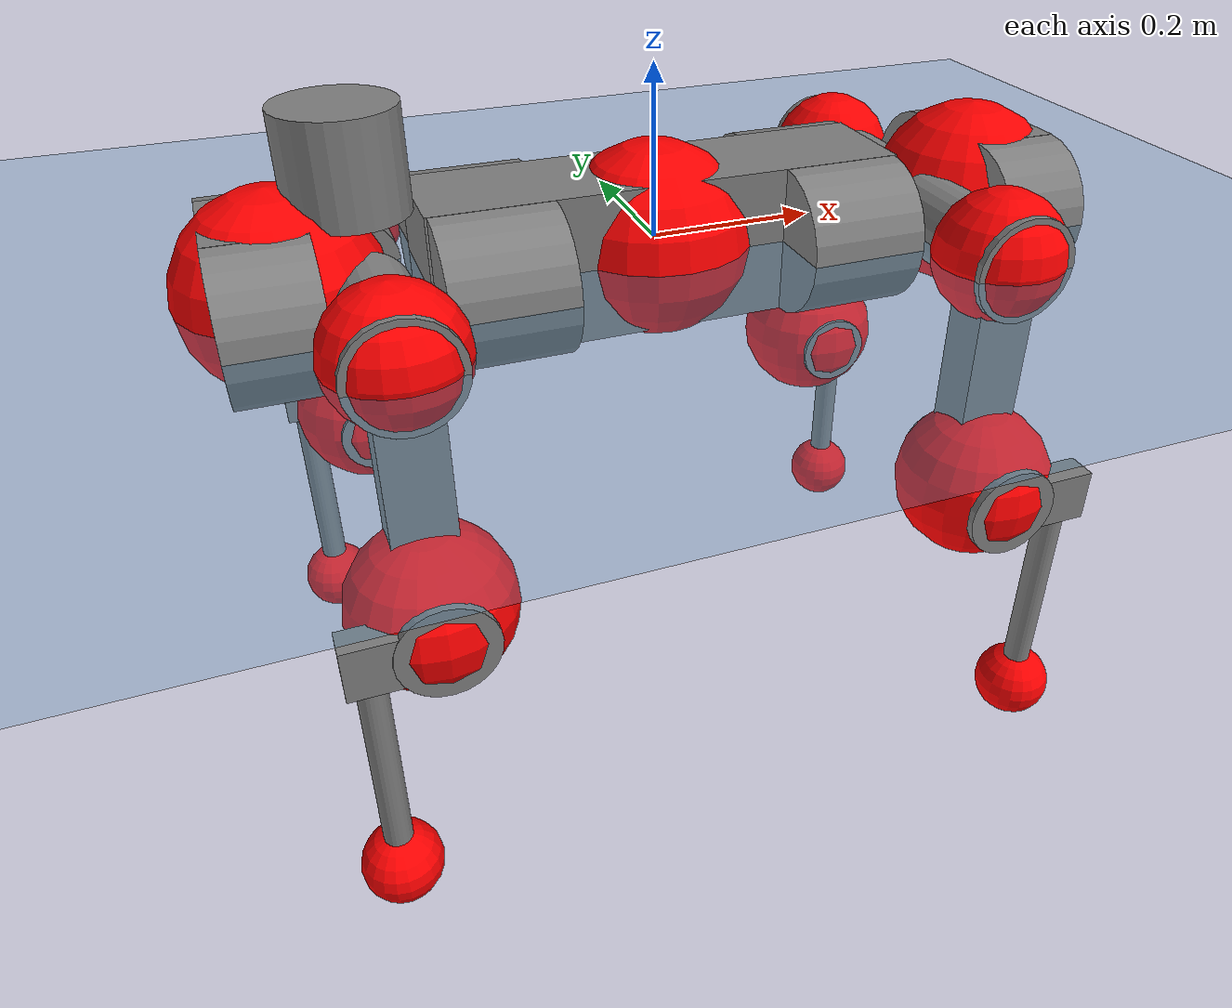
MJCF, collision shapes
<mujoco model="anymal_c">
  <compiler angle="radian" assetdir="assets" balanceinertia="true" inertiafromgeom="false"/>

  <option timestep="0.005" density="1.2" viscosity="2e-05"/>

  <size nkey="1"/>

  <visual>
    <quality shadowsize="8192"/>
    <map shadowclip="0.5"/>
  </visual>

  <default>
    <default class="/">
      <material specular="0" shininess="0.25"/>
      <geom contype="0" conaffinity="0" group="1" solref="-1000 -80"/>
      <site size="0.01 0.005 0.005" group="5"/>
      <general forcelimited="true" forcerange="-80 80" biastype="affine" gainprm="80" biasprm="0 -80 -2"/>
      <default class="anymal_c">
        <joint armature="0.01" damping="0.01" frictionloss="0.1"/>
        <default class="visual">
          <geom type="mesh" group="2"/>
          <default class="visual_zflip"/>
        </default>
        <default class="collision">
          <geom type="cylinder" group="3"/>
          <default class="foot">
            <geom size="0.03 0 0" type="sphere" condim="6" priority="1" friction="0.8 0.02 0.01" solimp="0.015 1 0.03"/>
          </default>
        </default>
      </default>
      <default class="reward_collision_sphere">
        <geom group="5" rgba="1 0 0 1"/>
      </default>
    </default>
  </default>

  <asset>
    <texture type="skybox" colorspace="auto" name="//unnamed_texture_0" builtin="gradient" rgb1="0.95 0.95 0.95" rgb2="0.95 0.95 0.95" width="100" height="600"/>
    <texture type="2d" colorspace="auto" name="texplane" builtin="checker" rgb1="0.345 0.575 0.748" rgb2="0.345 0.575 0.748" markrgb="1 1 1" width="512" height="512"/>
    <texture type="2d" colorspace="linear" name="base" file="base.png"/>
    <texture type="2d" colorspace="linear" name="top_shell" file="top_shell.png"/>
    <texture type="2d" colorspace="linear" name="bottom_shell" file="bottom_shell.png"/>
    <texture type="2d" colorspace="linear" name="remote" file="remote.png"/>
    <texture type="2d" colorspace="linear" name="hatch" file="hatch.png"/>
    <texture type="2d" colorspace="linear" name="handle" file="handle.png"/>
    <texture type="2d" colorspace="linear" name="face" file="face.png"/>
    <texture type="2d" colorspace="linear" name="battery" file="battery.png"/>
    <texture type="2d" colorspace="linear" name="lidar_cage" file="lidar_cage.png"/>
    <texture type="2d" colorspace="linear" name="depth_camera" file="depth_camera.png"/>
    <texture type="2d" colorspace="linear" name="wide_angle_camera" file="wide_angle_camera.png"/>
    <texture type="2d" colorspace="linear" name="lidar" file="lidar.png"/>
    <texture type="2d" colorspace="linear" name="drive" file="drive.png"/>
    <texture type="2d" colorspace="linear" name="hip_l" file="hip_l.png"/>
    <texture type="2d" colorspace="linear" name="shank_l" file="shank_l.png"/>
    <texture type="2d" colorspace="linear" name="foot" file="foot.png"/>
    <texture type="2d" colorspace="linear" name="thigh" file="thigh.png"/>
    <texture type="2d" colorspace="linear" name="shank_r" file="shank_r.png"/>
    <texture type="2d" colorspace="linear" name="hip_r" file="hip_r.png"/>
    <material name="MatPlane" class="/" texture="texplane" texuniform="true" texrepeat="2 2" specular="0.9" shininess="0.5"/>
    <material name="black_plastic" class="/" rgba="0.007 0.007 0.007 1"/>
    <material name="green" class="/" rgba="0.052 0.178 0.033 1"/>
    <material name="red" class="/" rgba="0.178 0.006 0.005 1"/>
    <material name="yellow" class="/" rgba="0.178 0.119 0.006 1"/>
    <material name="lwl" class="/" rgba="0.8 0.8 0.8 1"/>
    <material name="base" class="/" texture="base"/>
    <material name="top_shell" class="/" texture="top_shell"/>
    <material name="bottom_shell" class="/" texture="bottom_shell"/>
    <material name="hip_l" class="/" texture="hip_l"/>
    <material name="thigh" class="/" texture="thigh"/>
    <material name="shank_l" class="/" texture="shank_l"/>
    <material name="foot" class="/" texture="foot"/>
    <material name="hip_r" class="/" texture="hip_r"/>
    <material name="shank" class="/" texture="shank_r"/>
    <material name="hatch" class="/" texture="hatch"/>
    <material name="remote" class="/" texture="remote"/>
    <material name="handle" class="/" texture="handle"/>
    <material name="face" class="/" texture="face"/>
    <material name="depth_camera" class="/" texture="depth_camera"/>
    <material name="wide_angle_camera" class="/" texture="wide_angle_camera"/>
    <material name="battery" class="/" texture="battery"/>
    <material name="lidar_cage" class="/" texture="lidar_cage"/>
    <material name="lidar" class="/" texture="lidar"/>
    <material name="drive" class="/" texture="drive"/>
    <mesh name="base_0" class="/" file="base_0.obj"/>
    <mesh name="base_1" class="/" file="base_1.obj"/>
    <mesh name="base_2" class="/" file="base_2.obj"/>
    <mesh name="base_3" class="/" file="base_3.obj"/>
    <mesh name="base_4" class="/" file="base_4.obj"/>
    <mesh name="base_5" class="/" file="base_5.obj"/>
    <mesh name="top_shell" class="/" file="top_shell.obj"/>
    <mesh name="bottom_shell" class="/" file="bottom_shell.obj"/>
    <mesh name="remote" class="/" file="remote.obj"/>
    <mesh name="handle" class="/" file="handle.obj"/>
    <mesh name="face" class="/" file="face.obj"/>
    <mesh name="wide_angle_camera" class="/" file="wide_angle_camera.obj"/>
    <mesh name="depth_camera" class="/" file="depth_camera.obj"/>
    <mesh name="battery" class="/" file="battery.obj"/>
    <mesh name="lidar_cage" class="/" file="lidar_cage.obj"/>
    <mesh name="lidar" class="/" file="lidar.obj"/>
    <mesh name="drive" class="/" file="drive.obj"/>
    <mesh name="hip_l" class="/" file="hip_l.obj"/>
    <mesh name="thigh" class="/" file="thigh.obj"/>
    <mesh name="shank_l" class="/" file="shank_l.obj"/>
    <mesh name="foot" class="/" file="foot.obj"/>
    <mesh name="hip_r" class="/" file="hip_r.obj"/>
    <mesh name="hatch" class="/" file="hatch.obj"/>
    <mesh name="shank_r" class="/" file="shank_r.obj"/>
  </asset>

  <worldbody>
    <geom name="floor" class="/" size="100 100 0.125" type="plane" group="0" material="MatPlane"/>
    <light name="toplight_shadow" class="/" pos="0 0 5" dir="0.0990148 0.0990148 -0.990148" type="directional" ambient="0.04 0.04 0.04" diffuse="0.55 0.55 0.55" specular="0.12 0.12 0.12"/>
    <light name="toplight_fill" class="/" pos="0 0 5" dir="0.0990148 0.0990148 -0.990148" type="directional" castshadow="false" ambient="0.04 0.04 0.04" diffuse="0.3 0.3 0.3" specular="0.08 0.08 0.08"/>
    <body name="trunk" childclass="anymal_c" pos="7.37639e-05 -6.84468e-05 -0.0010969" quat="1 8.1959e-05 5.04391e-05 5.94514e-05">
      <inertial pos="0.00269312 0.00235898 0.050565" quat="0.499691 0.500034 0.500248 0.500027" mass="16.6795" diaginertia="0.489784 0.402761 0.226406"/>
      <joint name="//unnamed_joint_0" type="free" armature="0" damping="0" frictionloss="0"/>
      <geom name="//unnamed_geom_1" class="visual" material="green" mesh="base_0"/>
      <geom name="//unnamed_geom_2" class="visual" material="yellow" mesh="base_1"/>
      <geom name="//unnamed_geom_3" class="visual" material="red" mesh="base_2"/>
      <geom name="//unnamed_geom_4" class="visual" material="black_plastic" mesh="base_3"/>
      <geom name="//unnamed_geom_5" class="visual" material="lwl" mesh="base_4"/>
      <geom name="//unnamed_geom_6" class="visual" material="base" mesh="base_5"/>
      <geom name="trunk_1" class="collision" size="0.277272 0.0669276 0.0860498" type="box"/>
      <geom name="trunk_2" class="collision" size="0.0860498 0.0693179" pos="0.205186 0.0640724 0" quat="0.707107 0 0.707107 0"/>
      <geom name="trunk_3" class="collision" size="0.0860498 0.0693179" pos="-0.205186 0.0640724 0" quat="0.707107 0 0.707107 0"/>
      <geom name="trunk_4" class="collision" size="0.0860498 0.0693179" pos="0.205186 -0.0640724 0" quat="0.707107 0 0.707107 0"/>
      <geom name="trunk_5" class="collision" size="0.0860498 0.0693179" pos="-0.205186 -0.0640724 0" quat="0.707107 0 0.707107 0"/>
      <geom name="//unnamed_geom_12" class="visual" material="top_shell" mesh="top_shell"/>
      <geom name="//unnamed_geom_13" class="visual" material="bottom_shell" mesh="bottom_shell"/>
      <geom name="//unnamed_geom_14" class="visual" material="remote" mesh="remote"/>
      <geom name="//unnamed_geom_15" class="visual" material="handle" mesh="handle"/>
      <geom name="//unnamed_geom_16" class="visual" pos="0.391032 0 0" quat="1 0 0 0" material="face" mesh="face"/>
      <geom name="trunk_6" class="collision" size="0.052586 0.0669276 0.0860498" pos="0.442918 0 0" type="box"/>
      <geom name="//unnamed_geom_18" class="collision" size="0.0860498 0.052586" pos="0.442918 0.0640724 0" quat="0.707107 0 0.707107 0"/>
      <geom name="//unnamed_geom_19" class="collision" size="0.0860498 0.052586" pos="0.442918 -0.0640724 0" quat="0.707107 0 0.707107 0"/>
      <geom name="//unnamed_geom_20" class="visual" pos="0.435515 0 -0.0299845" quat="0.965926 0 0.258819 0" material="depth_camera" mesh="depth_camera"/>
      <geom name="//unnamed_geom_21" class="visual" pos="0.483955 0 0.0151141" material="wide_angle_camera" mesh="wide_angle_camera"/>
      <geom name="//unnamed_geom_22" class="visual_zflip" pos="-0.391032 0 0" quat="0 0 0 1" material="face" mesh="face"/>
      <geom name="trunk_7" class="collision" size="0.052586 0.0669276 0.0860498" pos="-0.442918 0 0" quat="0 0 0 1" type="box"/>
      <geom name="//unnamed_geom_24" class="collision" size="0.0860498 0.052586" pos="-0.442918 -0.0640724 0" quat="0 -0.707107 0 0.707107"/>
      <geom name="//unnamed_geom_25" class="collision" size="0.0860498 0.052586" pos="-0.442918 0.0640724 0" quat="0 -0.707107 0 0.707107"/>
      <geom name="//unnamed_geom_26" class="visual" pos="-0.435515 0 -0.0299845" quat="0 -0.258819 0 0.965926" material="depth_camera" mesh="depth_camera"/>
      <geom name="//unnamed_geom_27" class="visual_zflip" pos="-0.483955 0 0.0151141" quat="0 0 0 1" material="wide_angle_camera" mesh="wide_angle_camera"/>
      <geom name="//unnamed_geom_28" class="visual" material="battery" mesh="battery"/>
      <geom name="//unnamed_geom_29" class="visual" pos="0 0.0696199 0.0288261" quat="0.683013 -0.183013 0.183013 0.683013" material="depth_camera" mesh="depth_camera"/>
      <geom name="//unnamed_geom_30" class="visual" pos="0 -0.0696199 0.0288261" quat="0.683013 0.183013 0.183013 -0.683013" material="depth_camera" mesh="depth_camera"/>
      <geom name="//unnamed_geom_31" class="visual" pos="-0.343391 0 0.0742074" quat="1 0 0 0" material="lidar_cage" mesh="lidar_cage"/>
      <geom name="trunk_8" class="collision" size="0.0669276 0.0573665" pos="-0.343391 0 0.134785"/>
      <geom name="//unnamed_geom_33" class="visual" pos="-0.343391 -1.10248e-05 0.143569" quat="0.707107 0 0 -0.707107" material="lidar" mesh="lidar"/>
      <geom name="//unnamed_geom_34" class="visual" pos="0.28292 0.0952268 -1.62676e-09" quat="0.258819 0.965926 0 0" material="drive" mesh="drive"/>
      <geom name="//unnamed_geom_35" class="visual" pos="0.28292 -0.0952268 1.62676e-09" quat="0.258819 -0.965926 0 0" material="drive" mesh="drive"/>
      <geom name="//unnamed_geom_36" class="visual" pos="-0.28292 0.0952268 1.62676e-09" quat="0 0 0.965926 -0.258819" material="drive" mesh="drive"/>
      <geom name="//unnamed_geom_37" class="visual" pos="-0.28292 -0.0952268 -1.62676e-09" quat="0 0 -0.965926 -0.258819" material="drive" mesh="drive"/>
      <geom name="//unnamed_geom_38" class="visual" pos="0.109432 0 0.0737026" quat="1 0 0 0" material="hatch" mesh="hatch"/>
      <geom name="//unnamed_geom_39" class="reward_collision_sphere" size="0.114733"/>
      <geom name="//unnamed_geom_40" class="reward_collision_sphere" size="0.114733" pos="0.424522 0 0"/>
      <geom name="//unnamed_geom_41" class="reward_collision_sphere" size="0.114733" pos="-0.424522 0 0"/>
      <site name="imu" pos="0.229643 0.00767212 0.0420313" size="0.00956109"/>
      <camera name="track" pos="0 -1.83064 0" quat="0.707107 0.707107 0 0" mode="trackcom"/>
      <camera name="ego_camera" pos="0.424522 0 -0.040385" quat="-0.5 -0.5 0.5 0.5"/>
      <body name="LF_HIP" pos="0.283449 0.0953374 0.000234214" quat="0.258261 0.966075 -9.23979e-05 -9.83589e-05">
        <inertial pos="0.051497 -0.0137439 -0.00800734" quat="-0.127816 0.709597 -0.135544 0.679531" mass="2.49252" diaginertia="0.00443822 0.00320631 0.00350317"/>
        <joint name="LF_HAA" pos="0 0 0" axis="0.999999 -0.000884305 0.000906154" range="-0.704941 0.492808" armature="0.00976372" damping="0.00953111" frictionloss="0.0866059"/>
        <geom name="//unnamed_geom_42" class="visual" pos="0 -9.56948e-05 1.57178e-05" quat="0.258819 -0.965926 0 0" material="hip_l" mesh="hip_l"/>
        <geom name="//unnamed_geom_43" class="visual" pos="0.0565086 -0.0681362 -0.040036" quat="0.183013 -0.683013 0.683013 0.183013" material="drive" mesh="drive"/>
        <geom name="//unnamed_geom_44" class="collision" size="0.0478054 0.0669276" pos="0.0565086 -0.010947 -0.00697146" quat="-0.353553 -0.612372 0.612372 -0.353553"/>
        <body name="LF_THIGH" pos="0.0569608 -0.0661461 -0.0425915" quat="0.182771 -0.68314 0.683019 0.182759">
          <inertial pos="0.0292077 0.000319781 -0.24794" quat="0.993345 -0.00639054 -0.0797477 0.0828579" mass="2.57967" diaginertia="0.0226412 0.0190429 0.00413248"/>
          <joint name="LF_HFE" pos="0 0 0" axis="0.999999 0.000202886 0.00136768" stiffness="0.00127057" range="-3.16057 3.12433" armature="0.00923515" damping="0.00862145" frictionloss="0.0975667"/>
          <geom name="//unnamed_geom_45" class="visual" pos="0.000558325 8.79789e-07 0" quat="0.707107 0 0 -0.707107" material="thigh" mesh="thigh"/>
          <geom name="//unnamed_geom_46" class="collision" size="0.0621471 0.0382443" pos="0.0377353 0 0" quat="0.5 0.5 -0.5 -0.5"/>
          <geom name="//unnamed_geom_47" class="collision" size="0.0358541 0.0286833 0.135112" pos="0.0283015 0 -0.142674" quat="0.707107 0 0 -0.707107" type="box"/>
          <geom name="//unnamed_geom_48" class="visual" pos="0.0946212 0 -0.287743" quat="1 0 0 0" material="drive" mesh="drive"/>
          <geom name="//unnamed_geom_49" class="collision" size="0.0478054 0.0669276" pos="0.0285845 0 -0.287743" quat="0.707107 0 0.707107 0"/>
          <geom name="//unnamed_geom_50" class="reward_collision_sphere" size="0.0764887" pos="0.0235846 0 0"/>
          <body name="LF_SHANK" pos="0.0953772 0.000291568 -0.287063" quat="0.999999 -0.000139366 -0.00121151 -0.000255708">
            <inertial pos="0.0045943 -0.0561253 -0.0816437" quat="0.992939 -0.115835 -0.00122889 -0.0255355" mass="0.511879" diaginertia="0.00760387 0.00580038 0.00116271"/>
            <joint name="LF_KFE" pos="0 0 0" axis="0.999996 0.00117341 0.00240607" range="-3.13763 3.14747" armature="0.00987943" damping="0.0182992" frictionloss="0.0902641"/>
            <geom name="//unnamed_geom_51" class="visual" pos="0.000182057 0.00097074 0" quat="0.707107 0 0 -0.707107" material="shank_l" mesh="shank_l"/>
            <geom name="LF_kfe_act" class="collision" size="0.0573665 0.0191222" pos="0.0188676 0 0" quat="0.5 0.5 -0.5 -0.5"/>
            <geom name="//unnamed_geom_53" class="collision" size="0.0549753 0.0322687 0.0181661" pos="0.0188676 -0.05263 0" quat="0.5 0.5 -0.5 -0.5" type="box"/>
            <geom name="//unnamed_geom_54" class="visual" pos="0.0123111 -0.0801896 -0.341223" quat="0.382683 0 0 -0.92388" material="foot" mesh="foot"/>
            <geom name="LF_calf" class="collision" size="0.0167319 0.135052" pos="0.0123111 -0.0805024 -0.170611" quat="0.707107 0 0 -0.707107"/>
            <geom name="LF_foot" class="foot" size="0.0310198" pos="0.0123111 -0.0805024 -0.318506" quat="0.707107 0 0 -0.707107"/>
            <geom name="//unnamed_geom_57" class="reward_collision_sphere" size="0.0956109" pos="-0.0471691 0 0"/>
            <geom name="//unnamed_geom_58" class="reward_collision_sphere" size="0.0478054" pos="0.0123111 -0.0805024 -0.318506"/>
            <site name="LF_foot" class="foot" pos="0.0123111 -0.0805024 -0.318506" quat="0.707107 0 0 -0.707107" size="0.00956109"/>
          </body>
        </body>
      </body>
      <body name="RF_HIP" pos="0.282547 -0.0959039 0.000702184" quat="0.259522 -0.965737 -8.55269e-06 0.000101915">
        <inertial pos="0.0537826 0.0140685 -0.00803326" quat="0.135623 0.679771 0.128693 0.709194" mass="2.3316" diaginertia="0.00422645 0.00308642 0.0034503"/>
        <joint name="RF_HAA" pos="0 0 0" axis="0.999994 0.00331782 0.000123066" range="-0.463668 0.675548" armature="0.00964239" damping="0.00418956" frictionloss="0.0927409"/>
        <geom name="//unnamed_geom_59" class="visual" pos="0 9.56941e-05 1.57178e-05" quat="0.258819 0.965926 0 0" material="hip_r" mesh="hip_r"/>
        <geom name="//unnamed_geom_60" class="visual" pos="0.0565086 0.0681362 -0.040036" quat="0.183013 0.683013 0.683013 -0.183013" material="drive" mesh="drive"/>
        <geom name="//unnamed_geom_61" class="collision" size="0.0478054 0.0669276" pos="0.0565086 0.010947 -0.00697146" quat="-0.353553 0.612372 0.612372 0.353553"/>
        <body name="RF_THIGH" pos="0.0593764 0.0664052 -0.0424465" quat="0.183401 0.682953 0.683029 -0.182788">
          <inertial pos="0.0292922 -1.46933e-05 -0.247768" quat="0.992692 -0.00561545 -0.0812215 0.0890761" mass="2.78208" diaginertia="0.0226491 0.0199991 0.00449926"/>
          <joint name="RF_HFE" pos="0 0 0" axis="0.999929 0.00421752 0.0111189" stiffness="0.00602566" range="-3.09063 3.09222" armature="0.00954889" damping="0.000293473" frictionloss="0.099681"/>
          <geom name="//unnamed_geom_62" class="visual" pos="0.000558325 8.79789e-07 0" quat="0.707107 0 0 -0.707107" material="thigh" mesh="thigh"/>
          <geom name="//unnamed_geom_63" class="collision" size="0.0621471 0.0382443" pos="0.0377353 0 0" quat="0.5 0.5 0.5 0.5"/>
          <geom name="//unnamed_geom_64" class="collision" size="0.0358541 0.0286833 0.135112" pos="0.0283015 0 -0.142674" quat="0.707107 0 0 0.707107" type="box"/>
          <geom name="//unnamed_geom_65" class="visual" pos="0.0946212 0 -0.287743" quat="1 0 0 0" material="drive" mesh="drive"/>
          <geom name="//unnamed_geom_66" class="collision" size="0.0478054 0.0669276" pos="0.0285845 0 -0.287743" quat="0.707107 0 0.707107 0"/>
          <geom name="//unnamed_geom_67" class="reward_collision_sphere" size="0.0764887" pos="0.0235846 0 0"/>
          <body name="RF_SHANK" pos="0.096809 -0.0010016 -0.287764" quat="1 0.000205615 0.000126861 1.55238e-05">
            <inertial pos="0.00633698 0.0569257 -0.0787063" quat="0.992329 0.120699 0.000414346 0.0267425" mass="0.496869" diaginertia="0.00760956 0.00592023 0.00117171"/>
            <joint name="RF_KFE" pos="0 0 0" axis="0.999902 0.0131256 0.004883" range="-3.15596 3.09876" armature="0.00966995" damping="0.00833865" frictionloss="0.0831727"/>
            <geom name="//unnamed_geom_68" class="visual" pos="0.000182056 -0.000970738 0" quat="0.707107 0 0 0.707107" material="shank" mesh="shank_r"/>
            <geom name="RF_kfe_act" class="collision" size="0.0573665 0.0191222" pos="0.0188676 0 0" quat="0.5 0.5 0.5 0.5"/>
            <geom name="//unnamed_geom_70" class="collision" size="0.0549753 0.0322687 0.0181661" pos="0.0188676 0.05263 0" quat="0.5 0.5 0.5 0.5" type="box"/>
            <geom name="//unnamed_geom_71" class="visual" pos="0.0123112 0.0801896 -0.341223" quat="0.382683 0 0 0.92388" material="foot" mesh="foot"/>
            <geom name="RF_calf" class="collision" size="0.0167319 0.135052" pos="0.0123111 0.0805024 -0.170611" quat="0.707107 0 0 0.707107"/>
            <geom name="RF_foot" class="foot" size="0.0291066" pos="0.0123111 0.0805024 -0.318506" quat="0.707107 0 0 0.707107"/>
            <geom name="//unnamed_geom_74" class="reward_collision_sphere" size="0.0956109" pos="-0.0471691 0 0"/>
            <geom name="//unnamed_geom_75" class="reward_collision_sphere" size="0.0478054" pos="0.0123111 0.0805024 -0.318506"/>
            <site name="RF_foot" class="foot" pos="0.0123111 0.0805024 -0.318506" quat="0.707107 0 0 0.707107" size="0.00956109"/>
          </body>
        </body>
      </body>
      <body name="LH_HIP" pos="-0.281833 0.0967519 0.0003657" quat="-4.8557e-06 3.06586e-07 0.965921 -0.258837">
        <inertial pos="0.0539649 0.011772 -0.0087062" quat="0.14136 0.676497 0.117215 0.713183" mass="2.35306" diaginertia="0.00432535 0.00319175 0.00348221"/>
        <joint name="LH_HAA" pos="0 0 0" axis="0.999992 0.00147114 -0.00374716" range="-0.509339 0.732419" armature="0.00964265" damping="0.00588647" frictionloss="0.0946439"/>
        <geom name="//unnamed_geom_76" class="visual" pos="0 9.56941e-05 1.57178e-05" quat="-0.258819 -0.965926 0 0" material="hip_r" mesh="hip_r"/>
        <geom name="//unnamed_geom_77" class="visual" pos="0.0565086 0.0681362 -0.040036" quat="0.183013 0.683013 0.683013 -0.183013" material="drive" mesh="drive"/>
        <geom name="//unnamed_geom_78" class="collision" size="0.0478054 0.0669276" pos="0.0565086 0.010947 -0.00697146" quat="-0.353553 0.612372 0.612372 0.353553"/>
        <body name="LH_THIGH" pos="0.0557479 0.0644519 -0.0422221" quat="0.182976 0.683181 0.682862 -0.182985">
          <inertial pos="0.0301657 -0.00117371 -0.247914" quat="0.99312 -0.00209102 -0.0799359 0.0855437" mass="2.70308" diaginertia="0.023399 0.0197653 0.00449813"/>
          <joint name="LH_HFE" pos="0 0 0" axis="0.999996 -0.000331461 0.00293787" range="-3.14237 3.13691" armature="0.00946635" damping="0.0100256" frictionloss="0.0952489"/>
          <geom name="//unnamed_geom_79" class="visual" pos="0.000558325 8.79789e-07 0" quat="0.707107 0 0 -0.707107" material="thigh" mesh="thigh"/>
          <geom name="//unnamed_geom_80" class="collision" size="0.0621471 0.0382443" pos="0.0377353 0 0" quat="0.5 0.5 -0.5 -0.5"/>
          <geom name="//unnamed_geom_81" class="collision" size="0.0358541 0.0286833 0.135112" pos="0.0283015 0 -0.142674" quat="0.707107 0 0 -0.707107" type="box"/>
          <geom name="//unnamed_geom_82" class="visual" pos="0.0946212 0 -0.287743" quat="1 0 0 0" material="drive" mesh="drive"/>
          <geom name="//unnamed_geom_83" class="collision" size="0.0478054 0.0669276" pos="0.0285845 0 -0.287743" quat="0.707107 0 0.707107 0"/>
          <geom name="//unnamed_geom_84" class="reward_collision_sphere" size="0.0764887" pos="0.0235846 0 0"/>
          <body name="LH_SHANK" pos="0.0960468 -0.000566514 -0.288079" quat="1 -0.000602971 -0.000384885 8.55254e-05">
            <inertial pos="0.0066811 0.056989 -0.0823005" quat="0.99292 0.115936 -0.00103785 0.0258444" mass="0.516689" diaginertia="0.00794471 0.00630454 0.0012519"/>
            <joint name="LH_KFE" pos="0 0 0" axis="0.999995 -0.00320567 0.000654806" range="-3.14866 3.08818" armature="0.0094385" damping="0.0160813" frictionloss="0.0936961"/>
            <geom name="//unnamed_geom_85" class="visual" pos="0.000182056 -0.000970738 0" quat="-0.707107 0 0 -0.707107" material="shank" mesh="shank_r"/>
            <geom name="LH_kfe_act" class="collision" size="0.0573665 0.0191222" pos="0.0188676 0 0" quat="0.5 0.5 -0.5 -0.5"/>
            <geom name="//unnamed_geom_87" class="collision" size="0.0549753 0.0322687 0.0181661" pos="0.0188676 0.05263 0" quat="0.5 0.5 -0.5 -0.5" type="box"/>
            <geom name="//unnamed_geom_88" class="visual" pos="0.0123112 0.0801896 -0.341223" quat="-0.382683 0 0 -0.92388" material="foot" mesh="foot"/>
            <geom name="LH_calf" class="collision" size="0.0167319 0.135052" pos="0.0123111 0.0805024 -0.170611" quat="0.707107 0 0 -0.707107"/>
            <geom name="LH_foot" class="foot" size="0.0272719" pos="0.0123111 0.0805024 -0.318506" quat="0.707107 0 0 -0.707107"/>
            <geom name="//unnamed_geom_91" class="reward_collision_sphere" size="0.0956109" pos="-0.0471691 0 0"/>
            <geom name="//unnamed_geom_92" class="reward_collision_sphere" size="0.0478054" pos="0.0123111 0.0805024 -0.318506"/>
            <site name="LH_foot" class="foot" pos="0.0123111 0.0805024 -0.318506" quat="0.707107 0 0 -0.707107" size="0.00956109"/>
          </body>
        </body>
      </body>
      <body name="RH_HIP" pos="-0.282599 -0.0939082 -0.000559574" quat="0.000829419 0.000748282 -0.965977 -0.258624">
        <inertial pos="0.0526938 -0.0145088 -0.00801943" quat="-0.121821 0.704555 -0.128743 0.687159" mass="2.43912" diaginertia="0.00436348 0.00314544 0.00342244"/>
        <joint name="RH_HAA" pos="0 0 0" axis="0.999993 0.00248526 -0.00290906" range="-0.764204 0.472628" armature="0.00845741" damping="0.0121238" frictionloss="0.0980619"/>
        <geom name="//unnamed_geom_93" class="visual" pos="0 -9.56948e-05 1.57178e-05" quat="-0.258819 0.965926 0 0" material="hip_l" mesh="hip_l"/>
        <geom name="//unnamed_geom_94" class="visual" pos="0.0565086 -0.0681362 -0.040036" quat="-0.183013 0.683013 -0.683013 -0.183013" material="drive" mesh="drive"/>
        <geom name="//unnamed_geom_95" class="collision" size="0.0478054 0.0669276" pos="0.0565086 -0.010947 -0.00697146" quat="0.353553 0.612372 -0.612372 0.353553"/>
        <body name="RH_THIGH" pos="0.0564292 -0.0660504 -0.0447665" quat="-0.183063 0.682989 -0.683023 -0.183015">
          <inertial pos="0.0292308 0.00256254 -0.247688" quat="0.992734 -0.0121927 -0.0813206 0.0878519" mass="2.59145" diaginertia="0.0217212 0.0185798 0.0042232"/>
          <joint name="RH_HFE" pos="0 0 0" axis="0.99999 0.00340908 0.00303146" stiffness="0.00179819" range="-3.15549 3.09692" armature="0.0109262" damping="0.00913542" frictionloss="0.0906152"/>
          <geom name="//unnamed_geom_96" class="visual" pos="0.000558325 8.79789e-07 0" quat="0.707107 0 0 -0.707107" material="thigh" mesh="thigh"/>
          <geom name="//unnamed_geom_97" class="collision" size="0.0621471 0.0382443" pos="0.0377353 0 0" quat="0.5 0.5 0.5 0.5"/>
          <geom name="//unnamed_geom_98" class="collision" size="0.0358541 0.0286833 0.135112" pos="0.0283015 0 -0.142674" quat="0.707107 0 0 0.707107" type="box"/>
          <geom name="//unnamed_geom_99" class="visual" pos="0.0946212 0 -0.287743" quat="1 0 0 0" material="drive" mesh="drive"/>
          <geom name="//unnamed_geom_100" class="collision" size="0.0478054 0.0669276" pos="0.0285845 0 -0.287743" quat="0.707107 0 0.707107 0"/>
          <geom name="//unnamed_geom_101" class="reward_collision_sphere" size="0.0764887" pos="0.0235846 0 0"/>
          <body name="RH_SHANK" pos="0.0936283 -0.00087301 -0.288803" quat="1 -7.81779e-05 -0.000325995 0.00060019">
            <inertial pos="0.00497754 -0.0556363 -0.0816416" quat="0.991741 -0.124645 0.00692173 -0.0294339" mass="0.501487" diaginertia="0.00757142 0.0060357 0.00121689"/>
            <joint name="RH_KFE" pos="0 0 0" axis="0.999979 -0.00381888 0.00524785" stiffness="0.00694836" range="-3.08957 3.17837" armature="0.00935631" damping="0.00837656" frictionloss="0.0950443"/>
            <geom name="//unnamed_geom_102" class="visual" pos="0.000182057 0.00097074 0" quat="0.707107 0 0 -0.707107" material="shank_l" mesh="shank_l"/>
            <geom name="RH_kfe_act" class="collision" size="0.0573665 0.0191222" pos="0.0188676 0 0" quat="0.5 0.5 0.5 0.5"/>
            <geom name="//unnamed_geom_104" class="collision" size="0.0549753 0.0322687 0.0181661" pos="0.0188676 -0.05263 0" quat="0.5 0.5 0.5 0.5" type="box"/>
            <geom name="//unnamed_geom_105" class="visual" pos="0.0123111 -0.0801896 -0.341223" quat="0.382683 0 0 -0.92388" material="foot" mesh="foot"/>
            <geom name="RH_calf" class="collision" size="0.0167319 0.135052" pos="0.0123111 -0.0805024 -0.170611" quat="0.707107 0 0 0.707107"/>
            <geom name="RH_foot" class="foot" size="0.0247171" pos="0.0123111 -0.0805024 -0.318506" quat="0.707107 0 0 0.707107"/>
            <geom name="//unnamed_geom_108" class="reward_collision_sphere" size="0.0956109" pos="-0.0471691 0 0"/>
            <geom name="//unnamed_geom_109" class="reward_collision_sphere" size="0.0478054" pos="0.0123111 -0.0805024 -0.318506"/>
            <site name="RH_foot" class="foot" pos="0.0123111 -0.0805024 -0.318506" quat="0.707107 0 0 0.707107" size="0.00956109"/>
          </body>
        </body>
      </body>
    </body>
  </worldbody>

  <contact>
    <pair class="/" geom1="floor" geom2="LF_foot" name="//unnamed_contact_0"/>
    <pair class="/" geom1="floor" geom2="RF_foot" name="//unnamed_contact_1"/>
    <pair class="/" geom1="floor" geom2="LH_foot" name="//unnamed_contact_2"/>
    <pair class="/" geom1="floor" geom2="RH_foot" name="//unnamed_contact_3"/>
  </contact>

  <actuator>
    <general name="LF_HAA" class="/" joint="LF_HAA" forcerange="-77.6612 77.6612" gainprm="81.6455" biasprm="0 -81.6455 -1.92741"/>
    <general name="LF_HFE" class="/" joint="LF_HFE" forcerange="-69.1539 69.1539" gainprm="81.6455" biasprm="0 -81.6455 -1.92741"/>
    <general name="LF_KFE" class="/" joint="LF_KFE" forcerange="-74.2053 74.2053" gainprm="81.6455" biasprm="0 -81.6455 -1.92741"/>
    <general name="RF_HAA" class="/" joint="RF_HAA" forcerange="-79.9992 79.9992" gainprm="81.6455" biasprm="0 -81.6455 -1.92741"/>
    <general name="RF_HFE" class="/" joint="RF_HFE" forcerange="-75.5346 75.5346" gainprm="81.6455" biasprm="0 -81.6455 -1.92741"/>
    <general name="RF_KFE" class="/" joint="RF_KFE" forcerange="-78.3926 78.3926" gainprm="81.6455" biasprm="0 -81.6455 -1.92741"/>
    <general name="LH_HAA" class="/" joint="LH_HAA" forcerange="-79.3641 79.3641" gainprm="81.6455" biasprm="0 -81.6455 -1.92741"/>
    <general name="LH_HFE" class="/" joint="LH_HFE" forcerange="-76.7086 76.7086" gainprm="81.6455" biasprm="0 -81.6455 -1.92741"/>
    <general name="LH_KFE" class="/" joint="LH_KFE" forcerange="-78.5165 78.5165" gainprm="81.6455" biasprm="0 -81.6455 -1.92741"/>
    <general name="RH_HAA" class="/" joint="RH_HAA" forcerange="-69.5129 69.5129" gainprm="81.6455" biasprm="0 -81.6455 -1.92741"/>
    <general name="RH_HFE" class="/" joint="RH_HFE" forcerange="-77.5952 77.5952" gainprm="81.6455" biasprm="0 -81.6455 -1.92741"/>
    <general name="RH_KFE" class="/" joint="RH_KFE" forcerange="-78.6699 78.6699" gainprm="81.6455" biasprm="0 -81.6455 -1.92741"/>
  </actuator>

  <sensor>
    <gyro site="imu" name="imu_angular_velocity"/>
    <velocimeter site="imu" name="imu_linear_velocity"/>
    <framelinvel objtype="site" objname="LF_foot" name="LF_foot_global_linear_velocity"/>
    <framelinvel objtype="site" objname="RF_foot" name="RF_foot_global_linear_velocity"/>
    <framelinvel objtype="site" objname="LH_foot" name="LH_foot_global_linear_velocity"/>
    <framelinvel objtype="site" objname="RH_foot" name="RH_foot_global_linear_velocity"/>
  </sensor>

  <keyframe>
    <key name="home" qpos="0 0 0.55 1 0 0 0 0 0.4 -0.8 0 -0.4 0.8 0 -0.4 0.8 0 0.4 -0.8"/>
  </keyframe>
</mujoco>
